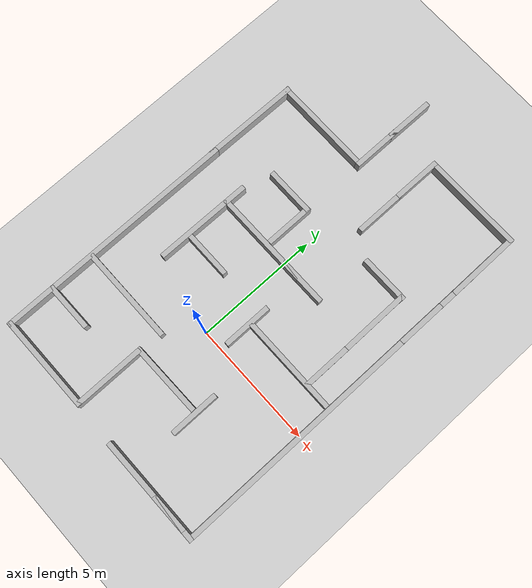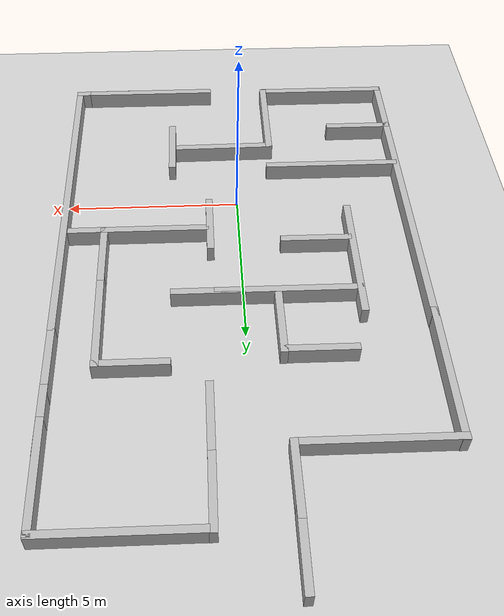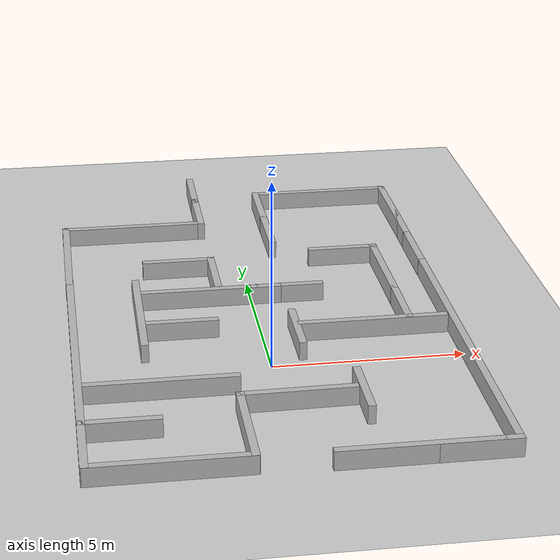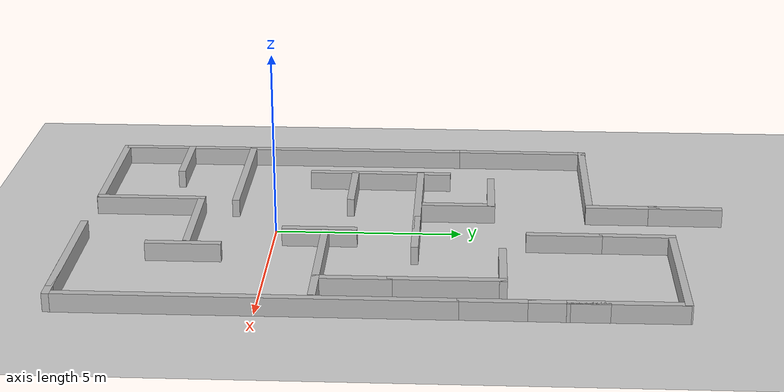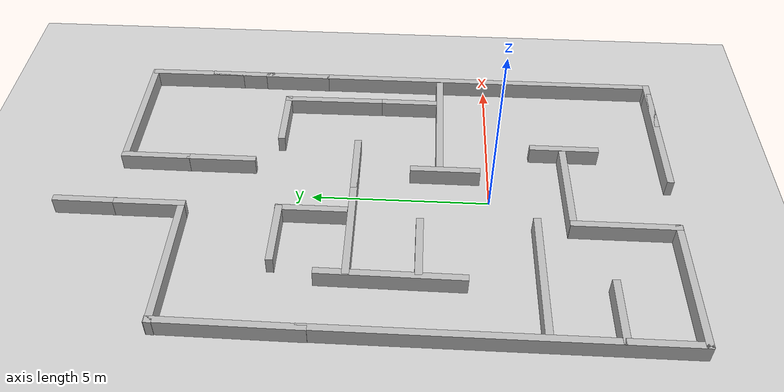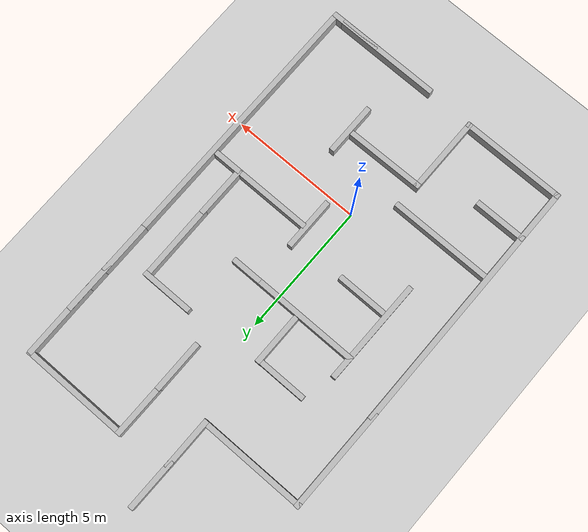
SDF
<sdf version="1.7">
 <world name="maze_world">
  <model name="ground_plane">
   <static>1</static>
   <link name="link">
    <collision name="collision">
     <geometry><plane><normal>0 0 1</normal><size>100 100</size></plane></geometry>
     <surface>
      <contact><collide_bitmask>65535</collide_bitmask></contact>
      <friction><ode><mu>100</mu><mu2>50</mu2></ode></friction>
     </surface>
    </collision>
    <visual name="visual">
     <cast_shadows>0</cast_shadows>
     <geometry><plane><normal>0 0 1</normal><size>100 100</size></plane></geometry>
     <material>
      <script><uri>file://media/materials/scripts/gazebo.material</uri><name>Gazebo/Grey</name></script>
     </material>
    </visual>
   </link>
  </model>
  <light name="sun" type="directional">
   <pose>0 0 10 0 -0 0</pose>
   <diffuse>0.8 0.8 0.8 1</diffuse>
   <specular>0.2 0.2 0.2 1</specular>
   <attenuation>
    <range>1000</range>
    <constant>0.9</constant>
    <linear>0.01</linear>
    <quadratic>0.001</quadratic>
   </attenuation>
   <direction>-0.5 0.1 -0.9</direction>
   <spot><inner_angle>0</inner_angle><outer_angle>0</outer_angle><falloff>0</falloff></spot>
  </light>
  <model name="south_wall_left">
   <static>1</static>
   <link name="link">
    <collision name="collision"><geometry><box><size>4 0.2 0.5</size></box></geometry></collision>
    <visual name="visual"><geometry><box><size>4 0.2 0.5</size></box></geometry></visual>
    <pose>-3 -5 0.25 0 -0 0</pose>
   </link>
  </model>
  <model name="south_wall_right">
   <pose>-0.33667 -0.08478 0 0 -0 0</pose>
   <static>1</static>
   <link name="link">
    <collision name="collision"><geometry><box><size>4 0.2 0.5</size></box></geometry></collision>
    <visual name="visual"><geometry><box><size>4 0.2 0.5</size></box></geometry></visual>
    <pose>3 -5 0.25 0 -0 0</pose>
   </link>
  </model>
  <model name="west_wall">
   <pose>0.07752 -0.091172 0 0 -0 0</pose>
   <static>1</static>
   <link name="link">
    <collision name="collision"><geometry><box><size>0.2 10 0.5</size></box></geometry></collision>
    <visual name="visual"><geometry><box><size>0.2 10 0.5</size></box></geometry></visual>
    <pose>-5 0 0.25 0 -0 0</pose>
   </link>
  </model>
  <model name="east_wall">
   <pose>0.00631 0.003506 0 0 -0 0</pose>
   <static>1</static>
   <link name="link">
    <collision name="collision"><geometry><box><size>0.2 10 0.5</size></box></geometry></collision>
    <visual name="visual"><geometry><box><size>0.2 10 0.5</size></box></geometry></visual>
    <pose>5 0 0.25 0 -0 0</pose>
   </link>
  </model>
  <model name="wall_1">
   <pose>-0.143938 1.16863 0 0 0 -1.56432</pose>
   <static>1</static>
   <link name="link">
    <collision name="collision"><geometry><box><size>3 0.2 0.5</size></box></geometry></collision>
    <visual name="visual"><geometry><box><size>3 0.2 0.5</size></box></geometry></visual>
    <pose>-3.5 4 0.25 0 -0 0</pose>
   </link>
  </model>
  <model name="wall_2">
   <pose>0.91386 -6.09347 0 0 -0 0</pose>
   <static>1</static>
   <link name="link">
    <collision name="collision"><geometry><box><size>0.2 3 0.5</size></box></geometry></collision>
    <visual name="visual"><geometry><box><size>0.2 3 0.5</size></box></geometry></visual>
    <pose>-2 2.5 0.25 0 -0 0</pose>
   </link>
  </model>
  <model name="wall_3">
   <pose>-2.94728 -4.22411 0 0 -0 0</pose>
   <static>1</static>
   <link name="link">
    <collision name="collision"><geometry><box><size>4 0.2 0.5</size></box></geometry></collision>
    <visual name="visual"><geometry><box><size>4 0.2 0.5</size></box></geometry></visual>
    <pose>0 3 0.25 0 -0 0</pose>
   </link>
  </model>
  <model name="wall_4">
   <pose>0.93137 -4.22068 0 0 -0 0</pose>
   <static>1</static>
   <link name="link">
    <collision name="collision"><geometry><box><size>0.2 2 0.5</size></box></geometry></collision>
    <visual name="visual"><geometry><box><size>0.2 2 0.5</size></box></geometry></visual>
    <pose>1 2 0.25 0 -0 0</pose>
   </link>
  </model>
  <gravity>0 0 -9.8</gravity>
  <magnetic_field>6e-06 2.3e-05 -4.2e-05</magnetic_field>
  <atmosphere type="adiabatic"/>
  <physics type="ode">
   <max_step_size>0.001</max_step_size>
   <real_time_factor>1</real_time_factor>
   <real_time_update_rate>1000</real_time_update_rate>
  </physics>
  <scene><ambient>0.4 0.4 0.4 1</ambient><background>0.7 0.7 0.7 1</background><shadows>1</shadows></scene>
  <audio><device>default</device></audio>
  <spherical_coordinates>
   <surface_model>EARTH_WGS84</surface_model>
   <latitude_deg>0</latitude_deg>
   <longitude_deg>0</longitude_deg>
   <elevation>0</elevation>
   <heading_deg>0</heading_deg>
  </spherical_coordinates>
  <model name="wall_2_clone">
   <static>1</static>
   <link name="link">
    <collision name="collision"><geometry><box><size>0.2 3 0.5</size></box></geometry></collision>
    <visual name="visual"><geometry><box><size>0.2 3 0.5</size></box></geometry></visual>
    <pose>-2 2.5 0.25 0 -0 0</pose>
   </link>
   <pose>-2.1601 -4.1983 0 0 0 -1.55952</pose>
  </model>
  <model name="south_wall_right_clone">
   <static>1</static>
   <link name="link">
    <collision name="collision"><geometry><box><size>4 0.2 0.5</size></box></geometry></collision>
    <visual name="visual"><geometry><box><size>4 0.2 0.5</size></box></geometry></visual>
    <pose>3 -5 0.25 0 -0 0</pose>
   </link>
   <pose>0.07229 15.5433 0 0 -0 0</pose>
  </model>
  <model name="south_wall_right_clone_0">
   <static>1</static>
   <link name="link">
    <collision name="collision"><geometry><box><size>4 0.2 0.5</size></box></geometry></collision>
    <visual name="visual"><geometry><box><size>4 0.2 0.5</size></box></geometry></visual>
    <pose>3 -5 0.25 0 -0 0</pose>
   </link>
   <pose>-6.01242 13.4896 0 0 -0 0</pose>
  </model>
  <model name="wall_3_clone">
   <static>1</static>
   <link name="link">
    <collision name="collision"><geometry><box><size>4 0.2 0.5</size></box></geometry></collision>
    <visual name="visual"><geometry><box><size>4 0.2 0.5</size></box></geometry></visual>
    <pose>0 3 0.25 0 -0 0</pose>
   </link>
   <pose>2.88757 -1.58952 0 0 -0 0</pose>
  </model>
  <model name="wall_3_clone_0">
   <static>1</static>
   <link name="link">
    <collision name="collision"><geometry><box><size>4 0.2 0.5</size></box></geometry></collision>
    <visual name="visual"><geometry><box><size>4 0.2 0.5</size></box></geometry></visual>
    <pose>0 3 0.25 0 -0 0</pose>
   </link>
   <pose>-1.20535 0.811344 0 0 -0 0</pose>
  </model>
  <model name="wall_3_clone_1">
   <static>1</static>
   <link name="link">
    <collision name="collision"><geometry><box><size>4 0.2 0.5</size></box></geometry></collision>
    <visual name="visual"><geometry><box><size>4 0.2 0.5</size></box></geometry></visual>
    <pose>0 3 0.25 0 -0 0</pose>
   </link>
   <pose>-6.14299 2.68153 0 0 0 -1.57793</pose>
  </model>
  <model name="wall_4_clone">
   <static>1</static>
   <link name="link">
    <collision name="collision"><geometry><box><size>0.2 2 0.5</size></box></geometry></collision>
    <visual name="visual"><geometry><box><size>0.2 2 0.5</size></box></geometry></visual>
    <pose>1 2 0.25 0 -0 0</pose>
   </link>
   <pose>-0.006022 5.72296 0 0 -0 0</pose>
  </model>
  <model name="wall_4_clone_0">
   <static>1</static>
   <link name="link">
    <collision name="collision"><geometry><box><size>0.2 2 0.5</size></box></geometry></collision>
    <visual name="visual"><geometry><box><size>0.2 2 0.5</size></box></geometry></visual>
    <pose>1 2 0.25 0 -0 0</pose>
   </link>
   <pose>-1.91245 7.39118 0 0 -0 0</pose>
  </model>
  <model name="wall_4_clone_1">
   <static>1</static>
   <link name="link">
    <collision name="collision"><geometry><box><size>0.2 2 0.5</size></box></geometry></collision>
    <visual name="visual"><geometry><box><size>0.2 2 0.5</size></box></geometry></visual>
    <pose>1 2 0.25 0 -0 0</pose>
   </link>
   <pose>-1.0368 4.81137 0 0 0 -1.56923</pose>
  </model>
  <model name="wall_4_clone_2_clone">
   <static>1</static>
   <link name="link">
    <collision name="collision"><geometry><box><size>0.2 2 0.5</size></box></geometry></collision>
    <visual name="visual"><geometry><box><size>0.2 2 0.5</size></box></geometry></visual>
    <pose>1 2 0.25 0 -0 0</pose>
   </link>
   <pose>2.10026 -4.08966 0 0 0 -1.56919</pose>
  </model>
  <model name="wall_4_clone_0_clone">
   <static>1</static>
   <link name="link">
    <collision name="collision"><geometry><box><size>0.2 2 0.5</size></box></geometry></collision>
    <visual name="visual"><geometry><box><size>0.2 2 0.5</size></box></geometry></visual>
    <pose>1 2 0.25 0 -0 0</pose>
   </link>
   <pose>-0.153045 -0.746994 0 0 -0 0</pose>
  </model>
  <model name="wall_4_clone_3">
   <static>1</static>
   <link name="link">
    <collision name="collision"><geometry><box><size>0.2 2 0.5</size></box></geometry></collision>
    <visual name="visual"><geometry><box><size>0.2 2 0.5</size></box></geometry></visual>
    <pose>1 2 0.25 0 -0 0</pose>
   </link>
   <pose>2.84496 0.337876 0 0 -0 0</pose>
  </model>
  <model name="wall_4_clone_3_clone">
   <static>1</static>
   <link name="link">
    <collision name="collision"><geometry><box><size>0.2 2 0.5</size></box></geometry></collision>
    <visual name="visual"><geometry><box><size>0.2 2 0.5</size></box></geometry></visual>
    <pose>1 2 0.25 0 -0 0</pose>
   </link>
   <pose>-4.12748 2.94393 0 0 0 -1.57279</pose>
  </model>
  <model name="wall_4_clone_1_clone_0">
   <static>1</static>
   <link name="link">
    <collision name="collision"><geometry><box><size>0.2 2 0.5</size></box></geometry></collision>
    <visual name="visual"><geometry><box><size>0.2 2 0.5</size></box></geometry></visual>
    <pose>1 2 0.25 0 -0 0</pose>
   </link>
   <pose>-6.00907 -2.0636 0 0 0 -1.56923</pose>
  </model>
  <model name="wall_4_clone_1_clone_1">
   <static>1</static>
   <link name="link">
    <collision name="collision"><geometry><box><size>0.2 2 0.5</size></box></geometry></collision>
    <visual name="visual"><geometry><box><size>0.2 2 0.5</size></box></geometry></visual>
    <pose>1 2 0.25 0 -0 0</pose>
   </link>
   <pose>0.107654 13.0902 0 0 -0 3.13565</pose>
  </model>
  <model name="wall_4_clone_3_clone_0">
   <static>1</static>
   <link name="link">
    <collision name="collision"><geometry><box><size>0.2 2 0.5</size></box></geometry></collision>
    <visual name="visual"><geometry><box><size>0.2 2 0.5</size></box></geometry></visual>
    <pose>1 2 0.25 0 -0 0</pose>
   </link>
   <pose>4.00148 3.95264 0 0 -0 0</pose>
  </model>
  <model name="wall_4_clone_1_clone_clone">
   <static>1</static>
   <link name="link">
    <collision name="collision"><geometry><box><size>0.2 2 0.5</size></box></geometry></collision>
    <visual name="visual"><geometry><box><size>0.2 2 0.5</size></box></geometry></visual>
    <pose>1 2 0.25 0 -0 0</pose>
   </link>
   <pose>0.934283 7.09093 0 0 0 -1.56923</pose>
  </model>
  <model name="wall_3_clone_1_clone">
   <static>1</static>
   <link name="link">
    <collision name="collision"><geometry><box><size>4 0.2 0.5</size></box></geometry></collision>
    <visual name="visual"><geometry><box><size>4 0.2 0.5</size></box></geometry></visual>
    <pose>0 3 0.25 0 -0 0</pose>
   </link>
   <pose>-7.91798 6.6253 0 0 0 -1.57793</pose>
  </model>
  <model name="wall_4_clone_1_clone_1_clone">
   <static>1</static>
   <link name="link">
    <collision name="collision"><geometry><box><size>0.2 2 0.5</size></box></geometry></collision>
    <visual name="visual"><geometry><box><size>0.2 2 0.5</size></box></geometry></visual>
    <pose>1 2 0.25 0 -0 0</pose>
   </link>
   <pose>2.00846 11.641 0 0 -0 3.13565</pose>
  </model>
  <model name="wall_4_clone_0_clone_clone">
   <static>1</static>
   <link name="link">
    <collision name="collision"><geometry><box><size>0.2 2 0.5</size></box></geometry></collision>
    <visual name="visual"><geometry><box><size>0.2 2 0.5</size></box></geometry></visual>
    <pose>1 2 0.25 0 -0 0</pose>
   </link>
   <pose>-1.90953 2.91855 0 0 -0 0</pose>
  </model>
  <model name="wall_4_clone_3_clone_clone">
   <static>1</static>
   <link name="link">
    <collision name="collision"><geometry><box><size>0.2 2 0.5</size></box></geometry></collision>
    <visual name="visual"><geometry><box><size>0.2 2 0.5</size></box></geometry></visual>
    <pose>1 2 0.25 0 -0 0</pose>
   </link>
   <pose>-3.8394 6.81546 0 0 0 -1.57279</pose>
  </model>
  <model name="wall_1_clone">
   <static>1</static>
   <link name="link">
    <collision name="collision"><geometry><box><size>3 0.2 0.5</size></box></geometry></collision>
    <visual name="visual"><geometry><box><size>3 0.2 0.5</size></box></geometry></visual>
    <pose>-3.5 4 0.25 0 -0 0</pose>
   </link>
   <pose>1.01763 5.5769 0 0 0 -1.56432</pose>
  </model>
  <model name="wall_4_clone_0_clone_clone_clone">
   <static>1</static>
   <link name="link">
    <collision name="collision"><geometry><box><size>0.2 2 0.5</size></box></geometry></collision>
    <visual name="visual"><geometry><box><size>0.2 2 0.5</size></box></geometry></visual>
    <pose>1 2 0.25 0 -0 0</pose>
   </link>
   <pose>4.00399 5.67235 0 0 -0 0</pose>
  </model>
 </world>
</sdf>
